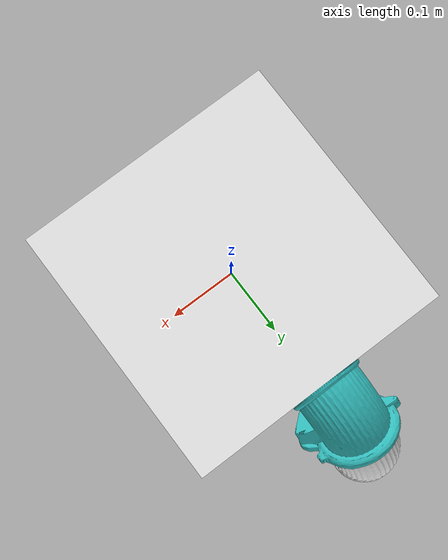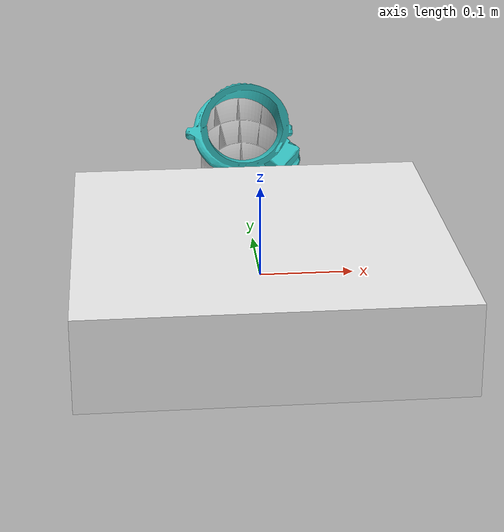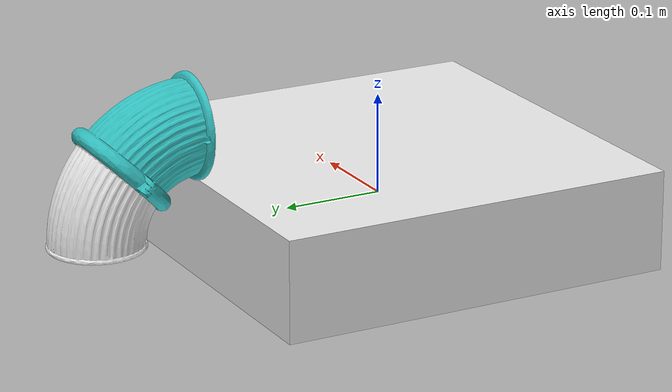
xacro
<?xml version="1.0"?>
<robot xmlns:xacro="http://www.ros.org/wiki/xacro" name="swivel_nozzle">

    <!-- Macros definition -->
    <xacro:macro name="nozzle" params="number position">
        <link name="nozzle_${number}_${position}">
            <visual>
                <geometry>
                    <mesh filename="package://avero_sim/meshes/Nozzle_${position}_V3.stl" scale="1 1 1"/>
                </geometry>
            </visual>
            <collision>
                <geometry>
                    <mesh filename="package://avero_sim/meshes/Nozzle_${position}_V3.stl" scale="1 1 1"/>
                </geometry>
            </collision>
            <xacro:if value="${position == 'top'}">
                <inertial>
                    <mass value="0.079"/>
                    <inertia ixx="0.000230" ixy="-0.000013" ixz="0.0" iyy="0.000149" iyz="0.0" izz="0.000226"/>
                </inertial>
            </xacro:if>
            <xacro:if value="${position == 'base'}">
                <inertial>
                    <mass value="0.19"/>
                    <inertia ixx="0.000649" ixy="-0.000121" ixz="-0.000076" iyy="0.000557" iyz="-0.000053" izz="0.000647"/>
                </inertial>
            </xacro:if>
        </link>
    </xacro:macro>

    <xacro:macro name="nozzle_joint" params="parent child *origin">
        <joint name="${parent}_to_${child}" type="revolute">
            <xacro:insert_block name="origin" />
            <parent link="${parent}"/>
            <child link="${child}"/>
            <axis xyz="0 1 0"/>
            <limit lower="-62.8" upper="62.8" velocity="10.0" effort="100.0"/>
        </joint>
    </xacro:macro>

    <!-- 2 nozzles -->
    <xacro:nozzle number="1" position="base"/>
    <xacro:nozzle number="1" position="top"/>

    <!-- frame and base_footprint Definition -->
    <link name="frame">
        <visual>
            <geometry>
                <box size="0.4 0.4 0.1"/>
            </geometry>
        </visual>
        <collision>
            <geometry>
                <box size="0.4 0.4 0.1"/>
            </geometry>
        </collision>
         <inertial>
            <mass value="100"/>
            <inertia ixx="1.417" ixy="0.0" ixz="0.0" iyy="1.417" iyz="0.0" izz="2.67"/>
        </inertial>
    </link>

    <link name="base_footprint">
    </link>

    <joint name="base_joint" type="fixed">
        <origin xyz="0.0 0.0 0.0" rpy="0.0 0.0 0.0"/>
        <parent link="base_footprint"/>
        <child link="frame"/>
    </joint>

    <!-- 2 joints -->
    <xacro:nozzle_joint parent="frame" child="nozzle_1_base">
        <origin xyz="0 0.2 0.1" rpy="0 1.5708 0"/>
    </xacro:nozzle_joint>
    <xacro:nozzle_joint parent="nozzle_1_base" child="nozzle_1_top">
            <origin xyz="0.0293 0.0707 0" rpy="0 0 -0.7854"/>
    </xacro:nozzle_joint>

<!-- Definiton of ducted fan rotors -->
    <link name="rotor_1">
        <visual>
            <geometry>
                <box size="0.09 0.01 0.01" />
            </geometry>
        </visual>
        <collision>
            <geometry>
                <box size="0.01 0.005 0.005" />
            </geometry>
        </collision>
        <inertial>
            <mass value="0.0065"/>
            <inertia ixx="0.045" ixy="0.0" ixz="0.0" iyy="0.02" iyz="0.0" izz="0.003"/>
        </inertial>
    </link>

    <joint name="rotor_1_joint" type="continuous">
        <origin xyz="0.028 0.068 0" rpy="1.5708 0 -0.7854"/>
        <parent link="nozzle_1_top"/>
        <child link="rotor_1"/>
        <axis xyz="0 0 1"/>
    </joint>

    <gazebo reference="frame">
      <material>Gazebo/White</material>
    </gazebo>
    <gazebo reference="nozzle_1_base">
      <material>Gazebo/Turquoise</material>
    </gazebo>
    <gazebo reference="nozzle_1_top">
      <material>Gazebo/White</material>
    </gazebo>

  <xacro:property name="p_gain" value="100" />
  <xacro:property name="i_gain" value="0" />
  <xacro:property name="d_gain" value="40" />
  <xacro:property name="tilt_control_mode" value="position" />
  <xacro:property name="servo_zero_offset" value="0.0" />

  <xacro:property name="thrust_constant" value="${6E-05}" />
  <xacro:property name="moment_constant" value="0.016" />
  <xacro:property name="time_constant_up" value="0.0125" />
  <xacro:property name="time_constant_down" value="0.025" />
  <xacro:property name="rotor_drag_coefficient" value="${8.06428e-05}" />
  <xacro:property name="rolling_moment_coefficient" value="0.000001" />

  <!-- Added from stork_body.xacro -->
  <xacro:property name="rotor_velocity_slowdown_sim" value="10" />

  <gazebo>
    <plugin name="multimotor_plugin" filename="librotors_gazebo_multimotor_plugin.so">
        <rotors>
            <rotor>
            <jointName>rotor_1_joint</jointName>
            <linkName>rotor_1</linkName>
            <spinDirection>ccw</spinDirection>
            <timeConstantUp>${time_constant_up}</timeConstantUp>
            <timeConstantDown>${time_constant_down}</timeConstantDown>
            <thrustConstant>${thrust_constant}</thrustConstant>
            <momentConstant>${moment_constant}</momentConstant>
            <rotorDragCoefficient>${rotor_drag_coefficient}</rotorDragCoefficient>
            <rollingMomentCoefficient>${rolling_moment_coefficient}</rollingMomentCoefficient>
            <rotorVelocitySlowdownSim>${rotor_velocity_slowdown_sim}</rotorVelocitySlowdownSim>
            </rotor>
        </rotors>
        <servos>
            <servo>
            <jointName>frame_to_nozzle_1_base</jointName>
            <spinDirection>ccw</spinDirection>
            <controlMode>${tilt_control_mode}</controlMode>
            <maxRotVelocity>${10}</maxRotVelocity>
            <minRotPosition>${-pi*6}</minRotPosition>
            <maxRotPosition>${pi*6}</maxRotPosition>
            <zeroOffset>${servo_zero_offset}</zeroOffset>
            <joint_control_pid>
                <p>${p_gain}</p>
                <i>${i_gain}</i>
                <d>${d_gain}</d>
                <iMax>1.0</iMax>
                <iMin>-1.0</iMin>
                <cmdMax>2.0</cmdMax>
                <cmdMin>-2.0</cmdMin>
            </joint_control_pid>
            </servo>
            <servo>
            <jointName>nozzle_1_base_to_nozzle_1_top</jointName>
            <spinDirection>ccw</spinDirection>
            <controlMode>${tilt_control_mode}</controlMode>
            <maxRotVelocity>${10}</maxRotVelocity>
            <minRotPosition>${-pi*6}</minRotPosition>
            <maxRotPosition>${pi*6}</maxRotPosition>
            <zeroOffset>${servo_zero_offset}</zeroOffset>
            <joint_control_pid>
                <p>${p_gain}</p>
                <i>${i_gain}</i>
                <d>${d_gain}</d>
                <iMax>1.0</iMax>
                <iMin>-1.0</iMin>
                <cmdMax>2.0</cmdMax>
                <cmdMin>-2.0</cmdMin>
            </joint_control_pid>
            </servo>
        </servos>
    </plugin>
  </gazebo>

</robot>
